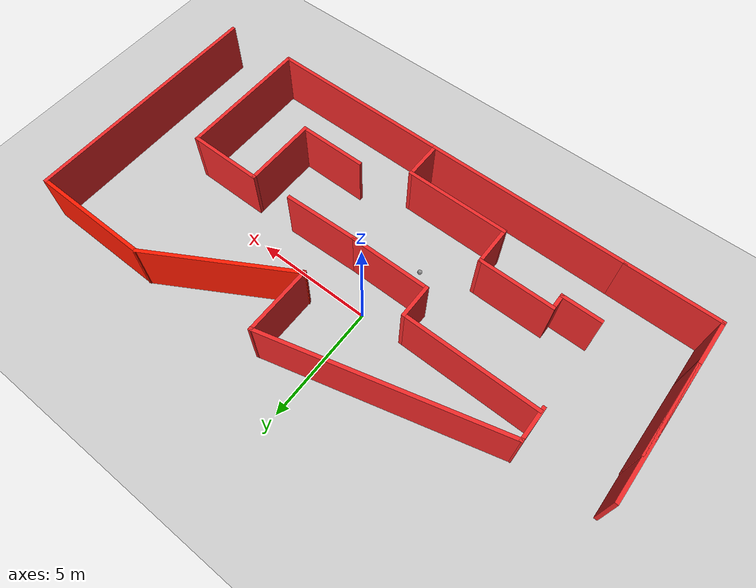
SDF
<sdf version="1.6">
 <world name="default">
  <light name="sun" type="directional">
   <pose>0 0 10 0 -0 0</pose>
   <diffuse>0.8 0.8 0.8 1</diffuse>
   <specular>0.2 0.2 0.2 1</specular>
   <attenuation>
    <range>1000</range>
    <constant>0.9</constant>
    <linear>0.01</linear>
    <quadratic>0.001</quadratic>
   </attenuation>
   <direction>-0.5 0.1 -0.9</direction>
  </light>
  <model name="ground_plane">
   <static>1</static>
   <link name="link">
    <collision name="collision">
     <geometry><plane><normal>0 0 1</normal><size>100 100</size></plane></geometry>
     <surface>
      <contact><collide_bitmask>65535</collide_bitmask></contact>
      <friction><ode><mu>100</mu><mu2>50</mu2></ode></friction>
     </surface>
    </collision>
    <visual name="visual">
     <cast_shadows>0</cast_shadows>
     <geometry><plane><normal>0 0 1</normal><size>100 100</size></plane></geometry>
     <material>
      <script><uri>file://media/materials/scripts/gazebo.material</uri><name>Gazebo/Grey</name></script>
     </material>
    </visual>
   </link>
  </model>
  <gravity>0 0 -9.8</gravity>
  <magnetic_field>6e-06 2.3e-05 -4.2e-05</magnetic_field>
  <atmosphere type="adiabatic"/>
  <physics name="default_physics" default="0" type="ode">
   <max_step_size>0.001</max_step_size>
   <real_time_factor>1</real_time_factor>
   <real_time_update_rate>1000</real_time_update_rate>
  </physics>
  <scene><ambient>0.4 0.4 0.4 1</ambient><background>0.7 0.7 0.7 1</background><shadows>1</shadows></scene>
  <audio><device>default</device></audio>
  <spherical_coordinates>
   <surface_model>EARTH_WGS84</surface_model>
   <latitude_deg>0</latitude_deg>
   <longitude_deg>0</longitude_deg>
   <elevation>0</elevation>
   <heading_deg>0</heading_deg>
  </spherical_coordinates>
  <model name="redbuilding">
   <pose>0.886517 -1.35536 0 0 -0 0</pose>
   <link name="Wall_0">
    <collision name="Wall_0_Collision">
     <geometry><box><size>2 0.15 2.5</size></box></geometry>
     <pose>0 0 1.25 0 -0 0</pose>
    </collision>
    <visual name="Wall_0_Visual">
     <pose>0 0 1.25 0 -0 0</pose>
     <geometry><box><size>2 0.15 2.5</size></box></geometry>
     <material>
      <script><uri>file://media/materials/scripts/gazebo.material</uri><name>Gazebo/Grey</name></script>
      <ambient>0.937255 0.160784 0.160784 1</ambient>
     </material>
     <meta><layer>0</layer></meta>
    </visual>
    <pose>-11.7357 -4.47608 0 0 -0 -1.5708</pose>
   </link>
   <link name="Wall_1">
    <collision name="Wall_1_Collision">
     <geometry><box><size>4 0.15 2.5</size></box></geometry>
     <pose>0 0 1.25 0 -0 0</pose>
    </collision>
    <visual name="Wall_1_Visual">
     <pose>0 0 1.25 0 -0 0</pose>
     <geometry><box><size>4 0.15 2.5</size></box></geometry>
     <material>
      <script><uri>file://media/materials/scripts/gazebo.material</uri><name>Gazebo/Grey</name></script>
      <ambient>0.937255 0.160784 0.160784 1</ambient>
     </material>
     <meta><layer>0</layer></meta>
    </visual>
    <pose>-9.81067 -5.40108 0 0 -0 0</pose>
   </link>
   <link name="Wall_10">
    <collision name="Wall_10_Collision">
     <geometry><box><size>5.75 0.15 2.5</size></box></geometry>
     <pose>0 0 1.25 0 -0 0</pose>
    </collision>
    <visual name="Wall_10_Visual">
     <pose>0 0 1.25 0 -0 0</pose>
     <geometry><box><size>5.75 0.15 2.5</size></box></geometry>
     <material>
      <script><uri>file://media/materials/scripts/gazebo.material</uri><name>Gazebo/Grey</name></script>
      <ambient>0.937255 0.160784 0.160784 1</ambient>
     </material>
     <meta><layer>0</layer></meta>
    </visual>
    <pose>-5.53566 1.29892 0 0 -0 0</pose>
   </link>
   <link name="Wall_11">
    <collision name="Wall_11_Collision">
     <geometry><box><size>1.5 0.15 2.5</size></box></geometry>
     <pose>0 0 1.25 0 -0 0</pose>
    </collision>
    <visual name="Wall_11_Visual">
     <pose>0 0 1.25 0 -0 0</pose>
     <geometry><box><size>1.5 0.15 2.5</size></box></geometry>
     <material>
      <script><uri>file://media/materials/scripts/gazebo.material</uri><name>Gazebo/Grey</name></script>
      <ambient>0.937255 0.160784 0.160784 1</ambient>
     </material>
     <meta><layer>0</layer></meta>
    </visual>
    <pose>-2.73567 0.623921 0 0 -0 -1.5708</pose>
   </link>
   <link name="Wall_12">
    <collision name="Wall_12_Collision">
     <geometry><box><size>3.5 0.15 2.5</size></box></geometry>
     <pose>0 0 1.25 0 -0 0</pose>
    </collision>
    <visual name="Wall_12_Visual">
     <pose>0 0 1.25 0 -0 0</pose>
     <geometry><box><size>3.5 0.15 2.5</size></box></geometry>
     <material>
      <script><uri>file://media/materials/scripts/gazebo.material</uri><name>Gazebo/Grey</name></script>
      <ambient>0.937255 0.160784 0.160784 1</ambient>
     </material>
     <meta><layer>0</layer></meta>
    </visual>
    <pose>-1.06066 -0.051079 0 0 -0 0</pose>
   </link>
   <link name="Wall_14">
    <collision name="Wall_14_Collision">
     <geometry><box><size>4.18145 0.15 2.5</size></box></geometry>
     <pose>0 0 1.25 0 -0 0</pose>
    </collision>
    <visual name="Wall_14_Visual">
     <pose>0 0 1.25 0 -0 0</pose>
     <geometry><box><size>4.18145 0.15 2.5</size></box></geometry>
     <material>
      <script><uri>file://media/materials/scripts/gazebo.material</uri><name>Gazebo/Grey</name></script>
      <ambient>0.937255 0.160784 0.160784 1</ambient>
     </material>
     <meta><layer>0</layer></meta>
    </visual>
    <pose>-11.7238 -1.53539 0 0 -0 -1.5767</pose>
   </link>
   <link name="Wall_15">
    <collision name="Wall_15_Collision">
     <geometry><box><size>6 0.15 2.5</size></box></geometry>
     <pose>0 0 1.25 0 -0 0</pose>
    </collision>
    <visual name="Wall_15_Visual">
     <pose>0 0 1.25 0 -0 0</pose>
     <geometry><box><size>6 0.15 2.5</size></box></geometry>
     <material>
      <script><uri>file://media/materials/scripts/gazebo.material</uri><name>Gazebo/Grey</name></script>
      <ambient>0.937255 0.160784 0.160784 1</ambient>
     </material>
     <meta><layer>0</layer></meta>
    </visual>
    <pose>-11.7357 -0.626079 0 0 -0 1.5708</pose>
   </link>
   <link name="Wall_17">
    <collision name="Wall_17_Collision">
     <geometry><box><size>1.5 0.15 2.5</size></box></geometry>
     <pose>0 0 1.25 0 -0 0</pose>
    </collision>
    <visual name="Wall_17_Visual">
     <pose>0 0 1.25 0 -0 0</pose>
     <geometry><box><size>1.5 0.15 2.5</size></box></geometry>
     <material>
      <script><uri>file://media/materials/scripts/gazebo.material</uri><name>Gazebo/Grey</name></script>
      <ambient>0.937255 0.160784 0.160784 1</ambient>
     </material>
     <meta><layer>0</layer></meta>
    </visual>
    <pose>-8.37753 1.82426 0 0 -0 -1.5708</pose>
   </link>
   <link name="Wall_19">
    <collision name="Wall_19_Collision">
     <geometry><box><size>8 0.15 2.5</size></box></geometry>
     <pose>0 0 1.25 0 -0 0</pose>
    </collision>
    <visual name="Wall_19_Visual">
     <pose>0 0 1.25 0 -0 0</pose>
     <geometry><box><size>8 0.15 2.5</size></box></geometry>
     <material>
      <script><uri>file://media/materials/scripts/gazebo.material</uri><name>Gazebo/Grey</name></script>
      <ambient>0.937255 0.160784 0.160784 1</ambient>
     </material>
     <meta><layer>0</layer></meta>
    </visual>
    <pose>4.63933 -5.40108 0 0 -0 0</pose>
   </link>
   <link name="Wall_2">
    <collision name="Wall_2_Collision">
     <geometry><box><size>8.75 0.15 2.5</size></box></geometry>
     <pose>0 0 1.25 0 -0 0</pose>
    </collision>
    <visual name="Wall_2_Visual">
     <pose>0 0 1.25 0 -0 0</pose>
     <geometry><box><size>8.75 0.15 2.5</size></box></geometry>
     <material>
      <script><uri>file://media/materials/scripts/gazebo.material</uri><name>Gazebo/Grey</name></script>
      <ambient>0.937255 0.160784 0.160784 1</ambient>
     </material>
     <meta><layer>0</layer></meta>
    </visual>
    <pose>-3.58567 -5.40108 0 0 -0 0</pose>
   </link>
   <link name="Wall_20">
    <collision name="Wall_20_Collision">
     <geometry><box><size>5.75 0.15 2.5</size></box></geometry>
     <pose>0 0 1.25 0 -0 0</pose>
    </collision>
    <visual name="Wall_20_Visual">
     <pose>0 0 1.25 0 -0 0</pose>
     <geometry><box><size>5.75 0.15 2.5</size></box></geometry>
     <material>
      <script><uri>file://media/materials/scripts/gazebo.material</uri><name>Gazebo/Grey</name></script>
      <ambient>0.937255 0.160784 0.160784 1</ambient>
     </material>
     <meta><layer>0</layer></meta>
    </visual>
    <pose>8.56433 -2.60108 0 0 -0 1.5708</pose>
   </link>
   <link name="Wall_21">
    <collision name="Wall_21_Collision">
     <geometry><box><size>3.25 0.15 2.5</size></box></geometry>
     <pose>0 0 1.25 0 -0 0</pose>
    </collision>
    <visual name="Wall_21_Visual">
     <pose>0 0 1.25 0 -0 0</pose>
     <geometry><box><size>3.25 0.15 2.5</size></box></geometry>
     <material>
      <script><uri>file://media/materials/scripts/gazebo.material</uri><name>Gazebo/Grey</name></script>
      <ambient>0.937255 0.160784 0.160784 1</ambient>
     </material>
     <meta><layer>0</layer></meta>
    </visual>
    <pose>7.01433 0.198921 0 0 -0 3.14159</pose>
   </link>
   <link name="Wall_22">
    <collision name="Wall_22_Collision">
     <geometry><box><size>3.25 0.15 2.5</size></box></geometry>
     <pose>0 0 1.25 0 -0 0</pose>
    </collision>
    <visual name="Wall_22_Visual">
     <pose>0 0 1.25 0 -0 0</pose>
     <geometry><box><size>3.25 0.15 2.5</size></box></geometry>
     <material>
      <script><uri>file://media/materials/scripts/gazebo.material</uri><name>Gazebo/Grey</name></script>
      <ambient>0.937255 0.160784 0.160784 1</ambient>
     </material>
     <meta><layer>0</layer></meta>
    </visual>
    <pose>5.46434 -1.35108 0 0 -0 -1.5708</pose>
   </link>
   <link name="Wall_23">
    <collision name="Wall_23_Collision">
     <geometry><box><size>3 0.15 2.5</size></box></geometry>
     <pose>0 0 1.25 0 -0 0</pose>
    </collision>
    <visual name="Wall_23_Visual">
     <pose>0 0 1.25 0 -0 0</pose>
     <geometry><box><size>3 0.15 2.5</size></box></geometry>
     <material>
      <script><uri>file://media/materials/scripts/gazebo.material</uri><name>Gazebo/Grey</name></script>
      <ambient>0.937255 0.160784 0.160784 1</ambient>
     </material>
     <meta><layer>0</layer></meta>
    </visual>
    <pose>4.03934 -2.90108 0 0 -0 3.14159</pose>
   </link>
   <link name="Wall_27">
    <collision name="Wall_27_Collision">
     <geometry><box><size>3.25161 0.15 2.5</size></box></geometry>
     <pose>0 0 1.25 0 -0 0</pose>
    </collision>
    <visual name="Wall_27_Visual">
     <pose>0 0 1.25 0 -0 0</pose>
     <geometry><box><size>3.25161 0.15 2.5</size></box></geometry>
     <material>
      <script><uri>file://media/materials/scripts/gazebo.material</uri><name>Gazebo/Grey</name></script>
      <ambient>0.937255 0.160784 0.160784 1</ambient>
     </material>
     <meta><layer>0</layer></meta>
    </visual>
    <pose>2.16433 -0.001079 0 0 -0 -3.10935</pose>
   </link>
   <link name="Wall_29">
    <collision name="Wall_29_Collision">
     <geometry><box><size>10 0.15 2.5</size></box></geometry>
     <pose>0 0 1.25 0 -0 0</pose>
    </collision>
    <visual name="Wall_29_Visual">
     <pose>0 0 1.25 0 -0 0</pose>
     <geometry><box><size>10 0.15 2.5</size></box></geometry>
     <material>
      <script><uri>file://media/materials/scripts/gazebo.material</uri><name>Gazebo/Grey</name></script>
      <ambient>0.937255 0.160784 0.160784 1</ambient>
     </material>
     <meta><layer>0</layer></meta>
    </visual>
    <pose>-3.62034 3.77394 0 0 -0 0.261799</pose>
   </link>
   <link name="Wall_3">
    <collision name="Wall_3_Collision">
     <geometry><box><size>1.75 0.15 2.5</size></box></geometry>
     <pose>0 0 1.25 0 -0 0</pose>
    </collision>
    <visual name="Wall_3_Visual">
     <pose>0 0 1.25 0 -0 0</pose>
     <geometry><box><size>1.75 0.15 2.5</size></box></geometry>
     <material>
      <script><uri>file://media/materials/scripts/gazebo.material</uri><name>Gazebo/Grey</name></script>
      <ambient>0.937255 0.160784 0.160784 1</ambient>
     </material>
     <meta><layer>0</layer></meta>
    </visual>
    <pose>0.714335 -4.60108 0 0 -0 1.5708</pose>
   </link>
   <link name="Wall_30">
    <collision name="Wall_30_Collision">
     <geometry><box><size>3 0.15 2.5</size></box></geometry>
     <pose>0 0 1.25 0 -0 0</pose>
    </collision>
    <visual name="Wall_30_Visual">
     <pose>0 0 1.25 0 -0 0</pose>
     <geometry><box><size>3 0.15 2.5</size></box></geometry>
     <material>
      <script><uri>file://media/materials/scripts/gazebo.material</uri><name>Gazebo/Grey</name></script>
      <ambient>0.937255 0.160784 0.160784 1</ambient>
     </material>
     <meta><layer>0</layer></meta>
    </visual>
    <pose>1.13684 3.62363 0 0 -0 -1.5708</pose>
   </link>
   <link name="Wall_31">
    <collision name="Wall_31_Collision">
     <geometry><box><size>6.5 0.15 2.5</size></box></geometry>
     <pose>0 0 1.25 0 -0 0</pose>
    </collision>
    <visual name="Wall_31_Visual">
     <pose>0 0 1.25 0 -0 0</pose>
     <geometry><box><size>6.5 0.15 2.5</size></box></geometry>
     <material>
      <script><uri>file://media/materials/scripts/gazebo.material</uri><name>Gazebo/Grey</name></script>
      <ambient>1 0.0980392 0 1</ambient>
     </material>
     <meta><layer>0</layer></meta>
    </visual>
    <pose>3.88647 3.78613 0 0 -0 0.523599</pose>
   </link>
   <link name="Wall_32">
    <collision name="Wall_32_Collision">
     <geometry><box><size>5.25 0.15 2.5</size></box></geometry>
     <pose>0 0 1.25 0 -0 0</pose>
    </collision>
    <visual name="Wall_32_Visual">
     <pose>0 0 1.25 0 -0 0</pose>
     <geometry><box><size>5.25 0.15 2.5</size></box></geometry>
     <material>
      <script><uri>file://media/materials/scripts/gazebo.material</uri><name>Gazebo/Grey</name></script>
      <ambient>1 0.0980392 0 1</ambient>
     </material>
     <meta><layer>0</layer></meta>
    </visual>
    <pose>9.1861 5.37363 0 0 -0 0</pose>
   </link>
   <link name="Wall_33">
    <collision name="Wall_33_Collision">
     <geometry><box><size>10.75 0.15 2.5</size></box></geometry>
     <pose>0 0 1.25 0 -0 0</pose>
    </collision>
    <visual name="Wall_33_Visual">
     <pose>0 0 1.25 0 -0 0</pose>
     <geometry><box><size>10.75 0.15 2.5</size></box></geometry>
     <material>
      <script><uri>file://media/materials/scripts/gazebo.material</uri><name>Gazebo/Grey</name></script>
      <ambient>0.937255 0.160784 0.160784 1</ambient>
     </material>
     <meta><layer>0</layer></meta>
    </visual>
    <pose>11.7361 0.073627 0 0 -0 -1.5708</pose>
   </link>
   <link name="Wall_4">
    <collision name="Wall_4_Collision">
     <geometry><box><size>4.5 0.15 2.5</size></box></geometry>
     <pose>0 0 1.25 0 -0 0</pose>
    </collision>
    <visual name="Wall_4_Visual">
     <pose>0 0 1.25 0 -0 0</pose>
     <geometry><box><size>4.5 0.15 2.5</size></box></geometry>
     <material>
      <script><uri>file://media/materials/scripts/gazebo.material</uri><name>Gazebo/Grey</name></script>
      <ambient>0.937255 0.160784 0.160784 1</ambient>
     </material>
     <meta><layer>0</layer></meta>
    </visual>
    <pose>-1.46067 -3.80108 0 0 -0 3.14159</pose>
   </link>
   <link name="Wall_5">
    <collision name="Wall_5_Collision">
     <geometry><box><size>1.75 0.15 2.5</size></box></geometry>
     <pose>0 0 1.25 0 -0 0</pose>
    </collision>
    <visual name="Wall_5_Visual">
     <pose>0 0 1.25 0 -0 0</pose>
     <geometry><box><size>1.75 0.15 2.5</size></box></geometry>
     <material>
      <script><uri>file://media/materials/scripts/gazebo.material</uri><name>Gazebo/Grey</name></script>
      <ambient>0.937255 0.160784 0.160784 1</ambient>
     </material>
     <meta><layer>0</layer></meta>
    </visual>
    <pose>-3.63566 -3.00108 0 0 -0 1.5708</pose>
   </link>
   <link name="Wall_6">
    <collision name="Wall_6_Collision">
     <geometry><box><size>3.25 0.15 2.5</size></box></geometry>
     <pose>0 0 1.25 0 -0 0</pose>
    </collision>
    <visual name="Wall_6_Visual">
     <pose>0 0 1.25 0 -0 0</pose>
     <geometry><box><size>3.25 0.15 2.5</size></box></geometry>
     <material>
      <script><uri>file://media/materials/scripts/gazebo.material</uri><name>Gazebo/Grey</name></script>
      <ambient>0.937255 0.160784 0.160784 1</ambient>
     </material>
     <meta><layer>0</layer></meta>
    </visual>
    <pose>-5.18567 -2.20108 0 0 -0 3.14159</pose>
   </link>
   <link name="Wall_7">
    <collision name="Wall_7_Collision">
     <geometry><box><size>0.75 0.15 2.5</size></box></geometry>
     <pose>0 0 1.25 0 -0 0</pose>
    </collision>
    <visual name="Wall_7_Visual">
     <pose>0 0 1.25 0 -0 0</pose>
     <geometry><box><size>0.75 0.15 2.5</size></box></geometry>
     <material>
      <script><uri>file://media/materials/scripts/gazebo.material</uri><name>Gazebo/Grey</name></script>
      <ambient>0.937255 0.160784 0.160784 1</ambient>
     </material>
     <meta><layer>0</layer></meta>
    </visual>
    <pose>-6.73567 -2.50108 0 0 -0 -1.5708</pose>
   </link>
   <link name="Wall_8">
    <collision name="Wall_8_Collision">
     <geometry><box><size>1.75 0.15 2.5</size></box></geometry>
     <pose>0 0 1.25 0 -0 0</pose>
    </collision>
    <visual name="Wall_8_Visual">
     <pose>0 0 1.25 0 -0 0</pose>
     <geometry><box><size>1.75 0.15 2.5</size></box></geometry>
     <material>
      <script><uri>file://media/materials/scripts/gazebo.material</uri><name>Gazebo/Grey</name></script>
      <ambient>0.937255 0.160784 0.160784 1</ambient>
     </material>
     <meta><layer>0</layer></meta>
    </visual>
    <pose>-7.53566 -2.80108 0 0 -0 3.14159</pose>
   </link>
   <static>1</static>
  </model>
  <model name="my_ball">
   <link name="link_0">
    <inertial>
     <mass>1</mass>
     <inertia><ixx>0.1</ixx><ixy>0</ixy><ixz>0</ixz><iyy>0.1</iyy><iyz>0</iyz><izz>0.1</izz></inertia>
    </inertial>
    <visual name="visual">
     <geometry><sphere><radius>0.1</radius></sphere></geometry>
     <material>
      <lighting>1</lighting>
      <script><uri>file://media/materials/scripts/gazebo.material</uri><name>Gazebo/Grey</name></script>
      <shader type="vertex"><normal_map>__default__</normal_map></shader>
      <ambient>1 1 1 1</ambient>
      <diffuse>1 1 1 1</diffuse>
      <specular>1 1 1 1</specular>
      <emissive>1 1 1 1</emissive>
     </material>
    </visual>
    <collision name="collision">
     <geometry><sphere><radius>0.1</radius></sphere></geometry>
     <surface>
      <friction>
       <ode><mu>1</mu><mu2>1</mu2><fdir1>0 0 0</fdir1><slip1>0</slip1><slip2>0</slip2></ode>
       <torsional>
        <coefficient>1</coefficient>
        <patch_radius>0</patch_radius>
        <surface_radius>0</surface_radius>
        <use_patch_radius>1</use_patch_radius>
        <ode><slip>0</slip></ode>
       </torsional>
      </friction>
      <bounce><restitution_coefficient>0</restitution_coefficient><threshold>1e+06</threshold></bounce>
      <contact>
       <collide_without_contact>0</collide_without_contact>
       <collide_without_contact_bitmask>1</collide_without_contact_bitmask>
       <collide_bitmask>1</collide_bitmask>
       <ode>
        <soft_cfm>0</soft_cfm>
        <soft_erp>0.2</soft_erp>
        <kp>1e+13</kp>
        <kd>1</kd>
        <max_vel>0.01</max_vel>
        <min_depth>0</min_depth>
       </ode>
       <bullet>
        <split_impulse>1</split_impulse>
        <split_impulse_penetration_threshold>-0.01</split_impulse_penetration_threshold>
        <soft_cfm>0</soft_cfm>
        <soft_erp>0.2</soft_erp>
        <kp>1e+13</kp>
        <kd>1</kd>
       </bullet>
      </contact>
     </surface>
    </collision>
   </link>
   <static>0</static>
   <pose>-0.65086 -2.89336 0.1 0 -0 0</pose>
  </model>
 </world>
</sdf>
